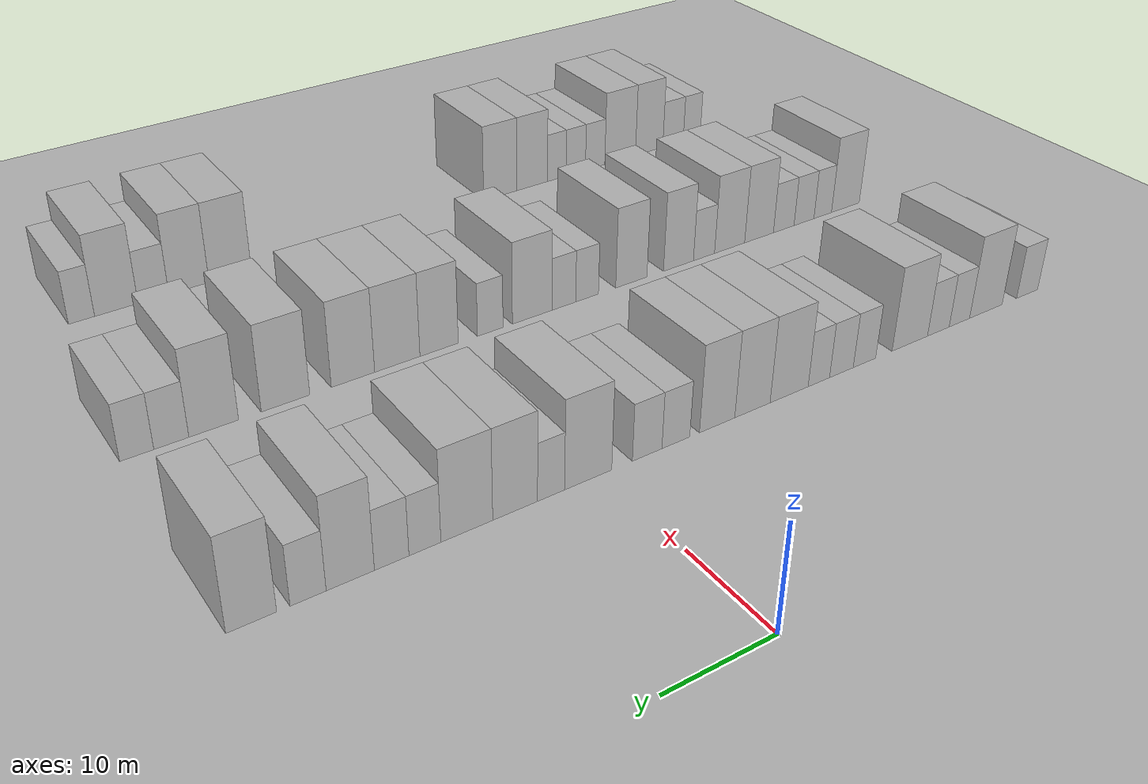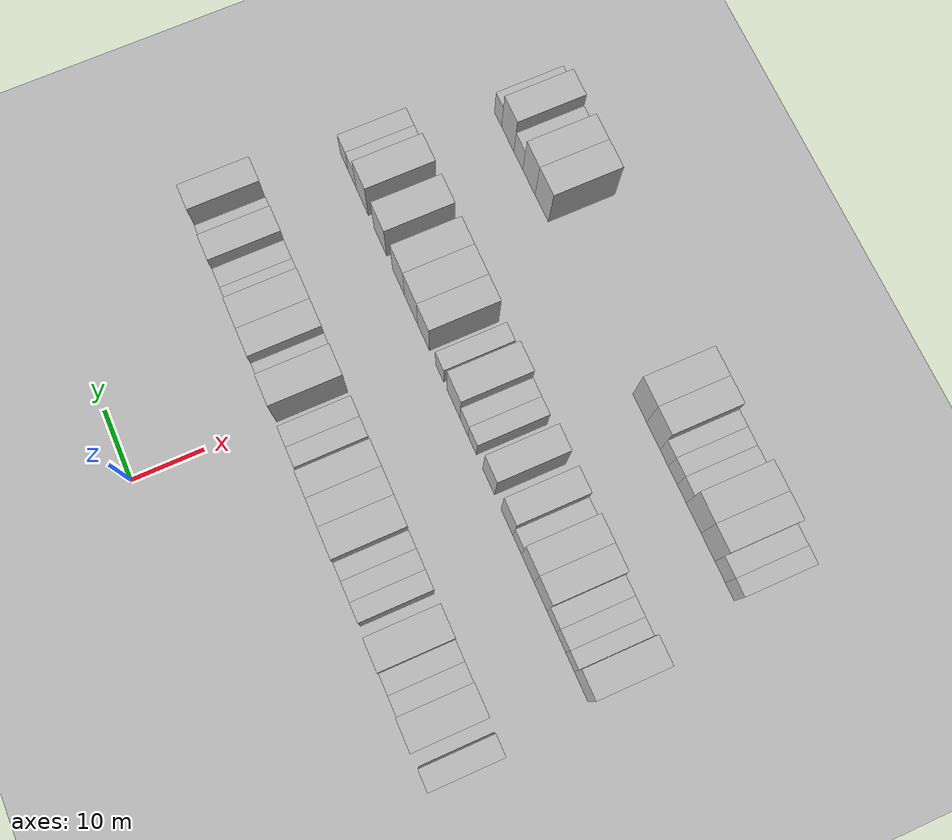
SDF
<sdf version="1.6">
 <world name="default">
  <include><name>ground_plane_1</name><uri>model://HANNAS_ground_plane</uri></include>
  <include>
   <name>ground_plane_2</name>
   <uri>model://HANNAS_ground_plane</uri>
   <pose>100 0 0  0 0 0</pose>
  </include>
  <model name="building_45">
   <static>1</static>
   <pose>25.0000 -48.6650 0 0.000000 0.000000 0.000000</pose>
   <link name="link">
    <pose>0 0 3.00 0 0 0</pose>
    <collision name="collision"><geometry><box><size>10.0000 2.9253 6.0000</size></box></geometry></collision>
    <visual name="visual">
     <cast_shadows>0</cast_shadows>
     <geometry><box><size>10.0000 2.9253 6.0000</size></box></geometry>
     <material>
      <script>
       <uri>model://HANNAS_wall/materials/scripts</uri>
       <uri>model://HANNAS_wall/materials/textures</uri>
       <name>vrc/HANNAS_wall</name>
      </script>
     </material>
    </visual>
   </link>
  </model>
  <model name="building_46">
   <static>1</static>
   <pose>25.0000 -43.0246 0 0.000000 0.000000 0.000000</pose>
   <link name="link">
    <pose>0 0 4.50 0 0 0</pose>
    <collision name="collision"><geometry><box><size>10.0000 4.3555 9.0000</size></box></geometry></collision>
    <visual name="visual">
     <cast_shadows>0</cast_shadows>
     <geometry><box><size>10.0000 4.3555 9.0000</size></box></geometry>
     <material>
      <script>
       <uri>model://HANNAS_wall/materials/scripts</uri>
       <uri>model://HANNAS_wall/materials/textures</uri>
       <name>vrc/HANNAS_wall</name>
      </script>
     </material>
    </visual>
   </link>
  </model>
  <model name="building_47">
   <static>1</static>
   <pose>25.0000 -39.5159 0 0.000000 0.000000 0.000000</pose>
   <link name="link">
    <pose>0 0 3.00 0 0 0</pose>
    <collision name="collision"><geometry><box><size>10.0000 2.6619 6.0000</size></box></geometry></collision>
    <visual name="visual">
     <cast_shadows>0</cast_shadows>
     <geometry><box><size>10.0000 2.6619 6.0000</size></box></geometry>
     <material>
      <script>
       <uri>model://HANNAS_wall/materials/scripts</uri>
       <uri>model://HANNAS_wall/materials/textures</uri>
       <name>vrc/HANNAS_wall</name>
      </script>
     </material>
    </visual>
   </link>
  </model>
  <model name="building_48">
   <static>1</static>
   <pose>25.0000 -36.7936 0 0.000000 0.000000 0.000000</pose>
   <link name="link">
    <pose>0 0 3.00 0 0 0</pose>
    <collision name="collision"><geometry><box><size>10.0000 2.7826 6.0000</size></box></geometry></collision>
    <visual name="visual">
     <cast_shadows>0</cast_shadows>
     <geometry><box><size>10.0000 2.7826 6.0000</size></box></geometry>
     <material>
      <script>
       <uri>model://HANNAS_wall/materials/scripts</uri>
       <uri>model://HANNAS_wall/materials/textures</uri>
       <name>vrc/HANNAS_wall</name>
      </script>
     </material>
    </visual>
   </link>
  </model>
  <model name="building_49">
   <static>1</static>
   <pose>25.0000 -33.1909 0 0.000000 0.000000 0.000000</pose>
   <link name="link">
    <pose>0 0 4.50 0 0 0</pose>
    <collision name="collision"><geometry><box><size>10.0000 4.4228 9.0000</size></box></geometry></collision>
    <visual name="visual">
     <cast_shadows>0</cast_shadows>
     <geometry><box><size>10.0000 4.4228 9.0000</size></box></geometry>
     <material>
      <script>
       <uri>model://HANNAS_wall/materials/scripts</uri>
       <uri>model://HANNAS_wall/materials/textures</uri>
       <name>vrc/HANNAS_wall</name>
      </script>
     </material>
    </visual>
   </link>
  </model>
  <model name="building_50">
   <static>1</static>
   <pose>25.0000 -27.6379 0 0.000000 0.000000 0.000000</pose>
   <link name="link">
    <pose>0 0 3.00 0 0 0</pose>
    <collision name="collision"><geometry><box><size>10.0000 2.6832 6.0000</size></box></geometry></collision>
    <visual name="visual">
     <cast_shadows>0</cast_shadows>
     <geometry><box><size>10.0000 2.6832 6.0000</size></box></geometry>
     <material>
      <script>
       <uri>model://HANNAS_wall/materials/scripts</uri>
       <uri>model://HANNAS_wall/materials/textures</uri>
       <name>vrc/HANNAS_wall</name>
      </script>
     </material>
    </visual>
   </link>
  </model>
  <model name="building_51">
   <static>1</static>
   <pose>25.0000 -24.9080 0 0.000000 0.000000 0.000000</pose>
   <link name="link">
    <pose>0 0 3.00 0 0 0</pose>
    <collision name="collision"><geometry><box><size>10.0000 2.7767 6.0000</size></box></geometry></collision>
    <visual name="visual">
     <cast_shadows>0</cast_shadows>
     <geometry><box><size>10.0000 2.7767 6.0000</size></box></geometry>
     <material>
      <script>
       <uri>model://HANNAS_wall/materials/scripts</uri>
       <uri>model://HANNAS_wall/materials/textures</uri>
       <name>vrc/HANNAS_wall</name>
      </script>
     </material>
    </visual>
   </link>
  </model>
  <model name="building_52">
   <static>1</static>
   <pose>25.0000 -22.2882 0 0.000000 0.000000 0.000000</pose>
   <link name="link">
    <pose>0 0 3.00 0 0 0</pose>
    <collision name="collision"><geometry><box><size>10.0000 2.4629 6.0000</size></box></geometry></collision>
    <visual name="visual">
     <cast_shadows>0</cast_shadows>
     <geometry><box><size>10.0000 2.4629 6.0000</size></box></geometry>
     <material>
      <script>
       <uri>model://HANNAS_wall/materials/scripts</uri>
       <uri>model://HANNAS_wall/materials/textures</uri>
       <name>vrc/HANNAS_wall</name>
      </script>
     </material>
    </visual>
   </link>
  </model>
  <model name="building_53">
   <static>1</static>
   <pose>25.0000 -18.9310 0 0.000000 0.000000 0.000000</pose>
   <link name="link">
    <pose>0 0 4.50 0 0 0</pose>
    <collision name="collision"><geometry><box><size>10.0000 4.2515 9.0000</size></box></geometry></collision>
    <visual name="visual">
     <cast_shadows>0</cast_shadows>
     <geometry><box><size>10.0000 4.2515 9.0000</size></box></geometry>
     <material>
      <script>
       <uri>model://HANNAS_wall/materials/scripts</uri>
       <uri>model://HANNAS_wall/materials/textures</uri>
       <name>vrc/HANNAS_wall</name>
      </script>
     </material>
    </visual>
   </link>
  </model>
  <model name="building_54">
   <static>1</static>
   <pose>25.0000 -14.8926 0 0.000000 0.000000 0.000000</pose>
   <link name="link">
    <pose>0 0 4.50 0 0 0</pose>
    <collision name="collision"><geometry><box><size>10.0000 3.8254 9.0000</size></box></geometry></collision>
    <visual name="visual">
     <cast_shadows>0</cast_shadows>
     <geometry><box><size>10.0000 3.8254 9.0000</size></box></geometry>
     <material>
      <script>
       <uri>model://HANNAS_wall/materials/scripts</uri>
       <uri>model://HANNAS_wall/materials/textures</uri>
       <name>vrc/HANNAS_wall</name>
      </script>
     </material>
    </visual>
   </link>
  </model>
  <model name="building_55">
   <static>1</static>
   <pose>25.0000 -11.1244 0 0.000000 0.000000 0.000000</pose>
   <link name="link">
    <pose>0 0 4.50 0 0 0</pose>
    <collision name="collision"><geometry><box><size>10.0000 3.7109 9.0000</size></box></geometry></collision>
    <visual name="visual">
     <cast_shadows>0</cast_shadows>
     <geometry><box><size>10.0000 3.7109 9.0000</size></box></geometry>
     <material>
      <script>
       <uri>model://HANNAS_wall/materials/scripts</uri>
       <uri>model://HANNAS_wall/materials/textures</uri>
       <name>vrc/HANNAS_wall</name>
      </script>
     </material>
    </visual>
   </link>
  </model>
  <model name="building_56">
   <static>1</static>
   <pose>25.0000 -6.8557 0 0.000000 0.000000 0.000000</pose>
   <link name="link">
    <pose>0 0 3.00 0 0 0</pose>
    <collision name="collision"><geometry><box><size>10.0000 2.8265 6.0000</size></box></geometry></collision>
    <visual name="visual">
     <cast_shadows>0</cast_shadows>
     <geometry><box><size>10.0000 2.8265 6.0000</size></box></geometry>
     <material>
      <script>
       <uri>model://HANNAS_wall/materials/scripts</uri>
       <uri>model://HANNAS_wall/materials/textures</uri>
       <name>vrc/HANNAS_wall</name>
      </script>
     </material>
    </visual>
   </link>
  </model>
  <model name="building_57">
   <static>1</static>
   <pose>25.0000 -3.9783 0 0.000000 0.000000 0.000000</pose>
   <link name="link">
    <pose>0 0 3.00 0 0 0</pose>
    <collision name="collision"><geometry><box><size>10.0000 2.9283 6.0000</size></box></geometry></collision>
    <visual name="visual">
     <cast_shadows>0</cast_shadows>
     <geometry><box><size>10.0000 2.9283 6.0000</size></box></geometry>
     <material>
      <script>
       <uri>model://HANNAS_wall/materials/scripts</uri>
       <uri>model://HANNAS_wall/materials/textures</uri>
       <name>vrc/HANNAS_wall</name>
      </script>
     </material>
    </visual>
   </link>
  </model>
  <model name="building_58">
   <static>1</static>
   <pose>25.0000 1.7141 0 0.000000 0.000000 0.000000</pose>
   <link name="link">
    <pose>0 0 4.50 0 0 0</pose>
    <collision name="collision"><geometry><box><size>10.0000 4.4565 9.0000</size></box></geometry></collision>
    <visual name="visual">
     <cast_shadows>0</cast_shadows>
     <geometry><box><size>10.0000 4.4565 9.0000</size></box></geometry>
     <material>
      <script>
       <uri>model://HANNAS_wall/materials/scripts</uri>
       <uri>model://HANNAS_wall/materials/textures</uri>
       <name>vrc/HANNAS_wall</name>
      </script>
     </material>
    </visual>
   </link>
  </model>
  <model name="building_59">
   <static>1</static>
   <pose>25.0000 5.1756 0 0.000000 0.000000 0.000000</pose>
   <link name="link">
    <pose>0 0 3.00 0 0 0</pose>
    <collision name="collision"><geometry><box><size>10.0000 2.4665 6.0000</size></box></geometry></collision>
    <visual name="visual">
     <cast_shadows>0</cast_shadows>
     <geometry><box><size>10.0000 2.4665 6.0000</size></box></geometry>
     <material>
      <script>
       <uri>model://HANNAS_wall/materials/scripts</uri>
       <uri>model://HANNAS_wall/materials/textures</uri>
       <name>vrc/HANNAS_wall</name>
      </script>
     </material>
    </visual>
   </link>
  </model>
  <model name="building_60">
   <static>1</static>
   <pose>25.0000 8.4031 0 0.000000 0.000000 0.000000</pose>
   <link name="link">
    <pose>0 0 4.50 0 0 0</pose>
    <collision name="collision"><geometry><box><size>10.0000 3.9883 9.0000</size></box></geometry></collision>
    <visual name="visual">
     <cast_shadows>0</cast_shadows>
     <geometry><box><size>10.0000 3.9883 9.0000</size></box></geometry>
     <material>
      <script>
       <uri>model://HANNAS_wall/materials/scripts</uri>
       <uri>model://HANNAS_wall/materials/textures</uri>
       <name>vrc/HANNAS_wall</name>
      </script>
     </material>
    </visual>
   </link>
  </model>
  <model name="building_61">
   <static>1</static>
   <pose>25.0000 12.6210 0 0.000000 0.000000 0.000000</pose>
   <link name="link">
    <pose>0 0 4.50 0 0 0</pose>
    <collision name="collision"><geometry><box><size>10.0000 4.4476 9.0000</size></box></geometry></collision>
    <visual name="visual">
     <cast_shadows>0</cast_shadows>
     <geometry><box><size>10.0000 4.4476 9.0000</size></box></geometry>
     <material>
      <script>
       <uri>model://HANNAS_wall/materials/scripts</uri>
       <uri>model://HANNAS_wall/materials/textures</uri>
       <name>vrc/HANNAS_wall</name>
      </script>
     </material>
    </visual>
   </link>
  </model>
  <model name="building_62">
   <static>1</static>
   <pose>25.0000 16.1687 0 0.000000 0.000000 0.000000</pose>
   <link name="link">
    <pose>0 0 3.00 0 0 0</pose>
    <collision name="collision"><geometry><box><size>10.0000 2.6478 6.0000</size></box></geometry></collision>
    <visual name="visual">
     <cast_shadows>0</cast_shadows>
     <geometry><box><size>10.0000 2.6478 6.0000</size></box></geometry>
     <material>
      <script>
       <uri>model://HANNAS_wall/materials/scripts</uri>
       <uri>model://HANNAS_wall/materials/textures</uri>
       <name>vrc/HANNAS_wall</name>
      </script>
     </material>
    </visual>
   </link>
  </model>
  <model name="building_63">
   <static>1</static>
   <pose>25.0000 18.8920 0 0.000000 0.000000 0.000000</pose>
   <link name="link">
    <pose>0 0 3.00 0 0 0</pose>
    <collision name="collision"><geometry><box><size>10.0000 2.7990 6.0000</size></box></geometry></collision>
    <visual name="visual">
     <cast_shadows>0</cast_shadows>
     <geometry><box><size>10.0000 2.7990 6.0000</size></box></geometry>
     <material>
      <script>
       <uri>model://HANNAS_wall/materials/scripts</uri>
       <uri>model://HANNAS_wall/materials/textures</uri>
       <name>vrc/HANNAS_wall</name>
      </script>
     </material>
    </visual>
   </link>
  </model>
  <model name="building_64">
   <static>1</static>
   <pose>25.0000 22.1858 0 0.000000 0.000000 0.000000</pose>
   <link name="link">
    <pose>0 0 4.50 0 0 0</pose>
    <collision name="collision"><geometry><box><size>10.0000 3.7886 9.0000</size></box></geometry></collision>
    <visual name="visual">
     <cast_shadows>0</cast_shadows>
     <geometry><box><size>10.0000 3.7886 9.0000</size></box></geometry>
     <material>
      <script>
       <uri>model://HANNAS_wall/materials/scripts</uri>
       <uri>model://HANNAS_wall/materials/textures</uri>
       <name>vrc/HANNAS_wall</name>
      </script>
     </material>
    </visual>
   </link>
  </model>
  <model name="building_65">
   <static>1</static>
   <pose>25.0000 25.4565 0 0.000000 0.000000 0.000000</pose>
   <link name="link">
    <pose>0 0 3.00 0 0 0</pose>
    <collision name="collision"><geometry><box><size>10.0000 2.7529 6.0000</size></box></geometry></collision>
    <visual name="visual">
     <cast_shadows>0</cast_shadows>
     <geometry><box><size>10.0000 2.7529 6.0000</size></box></geometry>
     <material>
      <script>
       <uri>model://HANNAS_wall/materials/scripts</uri>
       <uri>model://HANNAS_wall/materials/textures</uri>
       <name>vrc/HANNAS_wall</name>
      </script>
     </material>
    </visual>
   </link>
  </model>
  <model name="building_66">
   <static>1</static>
   <pose>25.0000 29.7013 0 0.000000 0.000000 0.000000</pose>
   <link name="link">
    <pose>0 0 4.50 0 0 0</pose>
    <collision name="collision"><geometry><box><size>10.0000 3.7367 9.0000</size></box></geometry></collision>
    <visual name="visual">
     <cast_shadows>0</cast_shadows>
     <geometry><box><size>10.0000 3.7367 9.0000</size></box></geometry>
     <material>
      <script>
       <uri>model://HANNAS_wall/materials/scripts</uri>
       <uri>model://HANNAS_wall/materials/textures</uri>
       <name>vrc/HANNAS_wall</name>
      </script>
     </material>
    </visual>
   </link>
  </model>
  <model name="building_177">
   <static>1</static>
   <pose>47.0000 -46.4811 0 0.000000 0.000000 0.000000</pose>
   <link name="link">
    <pose>0 0 4.50 0 0 0</pose>
    <collision name="collision"><geometry><box><size>10.0000 3.9517 9.0000</size></box></geometry></collision>
    <visual name="visual">
     <cast_shadows>0</cast_shadows>
     <geometry><box><size>10.0000 3.9517 9.0000</size></box></geometry>
     <material>
      <script>
       <uri>model://HANNAS_wall/materials/scripts</uri>
       <uri>model://HANNAS_wall/materials/textures</uri>
       <name>vrc/HANNAS_wall</name>
      </script>
     </material>
    </visual>
   </link>
  </model>
  <model name="building_178">
   <static>1</static>
   <pose>47.0000 -43.2829 0 0.000000 0.000000 0.000000</pose>
   <link name="link">
    <pose>0 0 3.00 0 0 0</pose>
    <collision name="collision"><geometry><box><size>10.0000 2.4446 6.0000</size></box></geometry></collision>
    <visual name="visual">
     <cast_shadows>0</cast_shadows>
     <geometry><box><size>10.0000 2.4446 6.0000</size></box></geometry>
     <material>
      <script>
       <uri>model://HANNAS_wall/materials/scripts</uri>
       <uri>model://HANNAS_wall/materials/textures</uri>
       <name>vrc/HANNAS_wall</name>
      </script>
     </material>
    </visual>
   </link>
  </model>
  <model name="building_179">
   <static>1</static>
   <pose>47.0000 -40.6939 0 0.000000 0.000000 0.000000</pose>
   <link name="link">
    <pose>0 0 3.00 0 0 0</pose>
    <collision name="collision"><geometry><box><size>10.0000 2.7335 6.0000</size></box></geometry></collision>
    <visual name="visual">
     <cast_shadows>0</cast_shadows>
     <geometry><box><size>10.0000 2.7335 6.0000</size></box></geometry>
     <material>
      <script>
       <uri>model://HANNAS_wall/materials/scripts</uri>
       <uri>model://HANNAS_wall/materials/textures</uri>
       <name>vrc/HANNAS_wall</name>
      </script>
     </material>
    </visual>
   </link>
  </model>
  <model name="building_180">
   <static>1</static>
   <pose>47.0000 -37.9364 0 0.000000 0.000000 0.000000</pose>
   <link name="link">
    <pose>0 0 3.00 0 0 0</pose>
    <collision name="collision"><geometry><box><size>10.0000 2.7815 6.0000</size></box></geometry></collision>
    <visual name="visual">
     <cast_shadows>0</cast_shadows>
     <geometry><box><size>10.0000 2.7815 6.0000</size></box></geometry>
     <material>
      <script>
       <uri>model://HANNAS_wall/materials/scripts</uri>
       <uri>model://HANNAS_wall/materials/textures</uri>
       <name>vrc/HANNAS_wall</name>
      </script>
     </material>
    </visual>
   </link>
  </model>
  <model name="building_181">
   <static>1</static>
   <pose>47.0000 -34.6448 0 0.000000 0.000000 0.000000</pose>
   <link name="link">
    <pose>0 0 4.50 0 0 0</pose>
    <collision name="collision"><geometry><box><size>10.0000 3.8015 9.0000</size></box></geometry></collision>
    <visual name="visual">
     <cast_shadows>0</cast_shadows>
     <geometry><box><size>10.0000 3.8015 9.0000</size></box></geometry>
     <material>
      <script>
       <uri>model://HANNAS_wall/materials/scripts</uri>
       <uri>model://HANNAS_wall/materials/textures</uri>
       <name>vrc/HANNAS_wall</name>
      </script>
     </material>
    </visual>
   </link>
  </model>
  <model name="building_182">
   <static>1</static>
   <pose>47.0000 -30.8089 0 0.000000 0.000000 0.000000</pose>
   <link name="link">
    <pose>0 0 4.50 0 0 0</pose>
    <collision name="collision"><geometry><box><size>10.0000 3.8704 9.0000</size></box></geometry></collision>
    <visual name="visual">
     <cast_shadows>0</cast_shadows>
     <geometry><box><size>10.0000 3.8704 9.0000</size></box></geometry>
     <material>
      <script>
       <uri>model://HANNAS_wall/materials/scripts</uri>
       <uri>model://HANNAS_wall/materials/textures</uri>
       <name>vrc/HANNAS_wall</name>
      </script>
     </material>
    </visual>
   </link>
  </model>
  <model name="building_183">
   <static>1</static>
   <pose>47.0000 -27.5439 0 0.000000 0.000000 0.000000</pose>
   <link name="link">
    <pose>0 0 3.00 0 0 0</pose>
    <collision name="collision"><geometry><box><size>10.0000 2.6595 6.0000</size></box></geometry></collision>
    <visual name="visual">
     <cast_shadows>0</cast_shadows>
     <geometry><box><size>10.0000 2.6595 6.0000</size></box></geometry>
     <material>
      <script>
       <uri>model://HANNAS_wall/materials/scripts</uri>
       <uri>model://HANNAS_wall/materials/textures</uri>
       <name>vrc/HANNAS_wall</name>
      </script>
     </material>
    </visual>
   </link>
  </model>
  <model name="building_184">
   <static>1</static>
   <pose>47.0000 -24.3726 0 0.000000 0.000000 0.000000</pose>
   <link name="link">
    <pose>0 0 4.50 0 0 0</pose>
    <collision name="collision"><geometry><box><size>10.0000 3.6830 9.0000</size></box></geometry></collision>
    <visual name="visual">
     <cast_shadows>0</cast_shadows>
     <geometry><box><size>10.0000 3.6830 9.0000</size></box></geometry>
     <material>
      <script>
       <uri>model://HANNAS_wall/materials/scripts</uri>
       <uri>model://HANNAS_wall/materials/textures</uri>
       <name>vrc/HANNAS_wall</name>
      </script>
     </material>
    </visual>
   </link>
  </model>
  <model name="building_185">
   <static>1</static>
   <pose>47.0000 -18.6805 0 0.000000 0.000000 0.000000</pose>
   <link name="link">
    <pose>0 0 4.50 0 0 0</pose>
    <collision name="collision"><geometry><box><size>10.0000 3.7012 9.0000</size></box></geometry></collision>
    <visual name="visual">
     <cast_shadows>0</cast_shadows>
     <geometry><box><size>10.0000 3.7012 9.0000</size></box></geometry>
     <material>
      <script>
       <uri>model://HANNAS_wall/materials/scripts</uri>
       <uri>model://HANNAS_wall/materials/textures</uri>
       <name>vrc/HANNAS_wall</name>
      </script>
     </material>
    </visual>
   </link>
  </model>
  <model name="building_186">
   <static>1</static>
   <pose>47.0000 -13.5285 0 0.000000 0.000000 0.000000</pose>
   <link name="link">
    <pose>0 0 3.00 0 0 0</pose>
    <collision name="collision"><geometry><box><size>10.0000 2.6029 6.0000</size></box></geometry></collision>
    <visual name="visual">
     <cast_shadows>0</cast_shadows>
     <geometry><box><size>10.0000 2.6029 6.0000</size></box></geometry>
     <material>
      <script>
       <uri>model://HANNAS_wall/materials/scripts</uri>
       <uri>model://HANNAS_wall/materials/textures</uri>
       <name>vrc/HANNAS_wall</name>
      </script>
     </material>
    </visual>
   </link>
  </model>
  <model name="building_187">
   <static>1</static>
   <pose>47.0000 -10.8962 0 0.000000 0.000000 0.000000</pose>
   <link name="link">
    <pose>0 0 3.00 0 0 0</pose>
    <collision name="collision"><geometry><box><size>10.0000 2.6617 6.0000</size></box></geometry></collision>
    <visual name="visual">
     <cast_shadows>0</cast_shadows>
     <geometry><box><size>10.0000 2.6617 6.0000</size></box></geometry>
     <material>
      <script>
       <uri>model://HANNAS_wall/materials/scripts</uri>
       <uri>model://HANNAS_wall/materials/textures</uri>
       <name>vrc/HANNAS_wall</name>
      </script>
     </material>
    </visual>
   </link>
  </model>
  <model name="building_188">
   <static>1</static>
   <pose>47.0000 -7.4083 0 0.000000 0.000000 0.000000</pose>
   <link name="link">
    <pose>0 0 4.50 0 0 0</pose>
    <collision name="collision"><geometry><box><size>10.0000 4.3140 9.0000</size></box></geometry></collision>
    <visual name="visual">
     <cast_shadows>0</cast_shadows>
     <geometry><box><size>10.0000 4.3140 9.0000</size></box></geometry>
     <material>
      <script>
       <uri>model://HANNAS_wall/materials/scripts</uri>
       <uri>model://HANNAS_wall/materials/textures</uri>
       <name>vrc/HANNAS_wall</name>
      </script>
     </material>
    </visual>
   </link>
  </model>
  <model name="building_189">
   <static>1</static>
   <pose>47.0000 -2.8998 0 0.000000 0.000000 0.000000</pose>
   <link name="link">
    <pose>0 0 3.00 0 0 0</pose>
    <collision name="collision"><geometry><box><size>10.0000 2.7029 6.0000</size></box></geometry></collision>
    <visual name="visual">
     <cast_shadows>0</cast_shadows>
     <geometry><box><size>10.0000 2.7029 6.0000</size></box></geometry>
     <material>
      <script>
       <uri>model://HANNAS_wall/materials/scripts</uri>
       <uri>model://HANNAS_wall/materials/textures</uri>
       <name>vrc/HANNAS_wall</name>
      </script>
     </material>
    </visual>
   </link>
  </model>
  <model name="building_190">
   <static>1</static>
   <pose>47.0000 2.3983 0 0.000000 0.000000 0.000000</pose>
   <link name="link">
    <pose>0 0 4.50 0 0 0</pose>
    <collision name="collision"><geometry><box><size>10.0000 3.8932 9.0000</size></box></geometry></collision>
    <visual name="visual">
     <cast_shadows>0</cast_shadows>
     <geometry><box><size>10.0000 3.8932 9.0000</size></box></geometry>
     <material>
      <script>
       <uri>model://HANNAS_wall/materials/scripts</uri>
       <uri>model://HANNAS_wall/materials/textures</uri>
       <name>vrc/HANNAS_wall</name>
      </script>
     </material>
    </visual>
   </link>
  </model>
  <model name="building_191">
   <static>1</static>
   <pose>47.0000 6.5740 0 0.000000 0.000000 0.000000</pose>
   <link name="link">
    <pose>0 0 4.50 0 0 0</pose>
    <collision name="collision"><geometry><box><size>10.0000 4.4583 9.0000</size></box></geometry></collision>
    <visual name="visual">
     <cast_shadows>0</cast_shadows>
     <geometry><box><size>10.0000 4.4583 9.0000</size></box></geometry>
     <material>
      <script>
       <uri>model://HANNAS_wall/materials/scripts</uri>
       <uri>model://HANNAS_wall/materials/textures</uri>
       <name>vrc/HANNAS_wall</name>
      </script>
     </material>
    </visual>
   </link>
  </model>
  <model name="building_192">
   <static>1</static>
   <pose>47.0000 10.8711 0 0.000000 0.000000 0.000000</pose>
   <link name="link">
    <pose>0 0 4.50 0 0 0</pose>
    <collision name="collision"><geometry><box><size>10.0000 4.1358 9.0000</size></box></geometry></collision>
    <visual name="visual">
     <cast_shadows>0</cast_shadows>
     <geometry><box><size>10.0000 4.1358 9.0000</size></box></geometry>
     <material>
      <script>
       <uri>model://HANNAS_wall/materials/scripts</uri>
       <uri>model://HANNAS_wall/materials/textures</uri>
       <name>vrc/HANNAS_wall</name>
      </script>
     </material>
    </visual>
   </link>
  </model>
  <model name="building_193">
   <static>1</static>
   <pose>47.0000 17.1426 0 0.000000 0.000000 0.000000</pose>
   <link name="link">
    <pose>0 0 4.50 0 0 0</pose>
    <collision name="collision"><geometry><box><size>10.0000 4.4072 9.0000</size></box></geometry></collision>
    <visual name="visual">
     <cast_shadows>0</cast_shadows>
     <geometry><box><size>10.0000 4.4072 9.0000</size></box></geometry>
     <material>
      <script>
       <uri>model://HANNAS_wall/materials/scripts</uri>
       <uri>model://HANNAS_wall/materials/textures</uri>
       <name>vrc/HANNAS_wall</name>
      </script>
     </material>
    </visual>
   </link>
  </model>
  <model name="building_194">
   <static>1</static>
   <pose>47.0000 23.4876 0 0.000000 0.000000 0.000000</pose>
   <link name="link">
    <pose>0 0 4.50 0 0 0</pose>
    <collision name="collision"><geometry><box><size>10.0000 4.2829 9.0000</size></box></geometry></collision>
    <visual name="visual">
     <cast_shadows>0</cast_shadows>
     <geometry><box><size>10.0000 4.2829 9.0000</size></box></geometry>
     <material>
      <script>
       <uri>model://HANNAS_wall/materials/scripts</uri>
       <uri>model://HANNAS_wall/materials/textures</uri>
       <name>vrc/HANNAS_wall</name>
      </script>
     </material>
    </visual>
   </link>
  </model>
  <model name="building_195">
   <static>1</static>
   <pose>47.0000 27.0998 0 0.000000 0.000000 0.000000</pose>
   <link name="link">
    <pose>0 0 3.00 0 0 0</pose>
    <collision name="collision"><geometry><box><size>10.0000 2.9415 6.0000</size></box></geometry></collision>
    <visual name="visual">
     <cast_shadows>0</cast_shadows>
     <geometry><box><size>10.0000 2.9415 6.0000</size></box></geometry>
     <material>
      <script>
       <uri>model://HANNAS_wall/materials/scripts</uri>
       <uri>model://HANNAS_wall/materials/textures</uri>
       <name>vrc/HANNAS_wall</name>
      </script>
     </material>
    </visual>
   </link>
  </model>
  <model name="building_196">
   <static>1</static>
   <pose>47.0000 29.9700 0 0.000000 0.000000 0.000000</pose>
   <link name="link">
    <pose>0 0 3.00 0 0 0</pose>
    <collision name="collision"><geometry><box><size>10.0000 2.7989 6.0000</size></box></geometry></collision>
    <visual name="visual">
     <cast_shadows>0</cast_shadows>
     <geometry><box><size>10.0000 2.7989 6.0000</size></box></geometry>
     <material>
      <script>
       <uri>model://HANNAS_wall/materials/scripts</uri>
       <uri>model://HANNAS_wall/materials/textures</uri>
       <name>vrc/HANNAS_wall</name>
      </script>
     </material>
    </visual>
   </link>
  </model>
  <model name="building_308">
   <static>1</static>
   <pose>69.0000 -43.5328 0 0.000000 0.000000 0.000000</pose>
   <link name="link">
    <pose>0 0 3.00 0 0 0</pose>
    <collision name="collision"><geometry><box><size>10.0000 2.4768 6.0000</size></box></geometry></collision>
    <visual name="visual">
     <cast_shadows>0</cast_shadows>
     <geometry><box><size>10.0000 2.4768 6.0000</size></box></geometry>
     <material>
      <script>
       <uri>model://HANNAS_wall/materials/scripts</uri>
       <uri>model://HANNAS_wall/materials/textures</uri>
       <name>vrc/HANNAS_wall</name>
      </script>
     </material>
    </visual>
   </link>
  </model>
  <model name="building_309">
   <static>1</static>
   <pose>69.0000 -40.8245 0 0.000000 0.000000 0.000000</pose>
   <link name="link">
    <pose>0 0 3.00 0 0 0</pose>
    <collision name="collision"><geometry><box><size>10.0000 2.9398 6.0000</size></box></geometry></collision>
    <visual name="visual">
     <cast_shadows>0</cast_shadows>
     <geometry><box><size>10.0000 2.9398 6.0000</size></box></geometry>
     <material>
      <script>
       <uri>model://HANNAS_wall/materials/scripts</uri>
       <uri>model://HANNAS_wall/materials/textures</uri>
       <name>vrc/HANNAS_wall</name>
      </script>
     </material>
    </visual>
   </link>
  </model>
  <model name="building_310">
   <static>1</static>
   <pose>69.0000 -37.4241 0 0.000000 0.000000 0.000000</pose>
   <link name="link">
    <pose>0 0 4.50 0 0 0</pose>
    <collision name="collision"><geometry><box><size>10.0000 3.8610 9.0000</size></box></geometry></collision>
    <visual name="visual">
     <cast_shadows>0</cast_shadows>
     <geometry><box><size>10.0000 3.8610 9.0000</size></box></geometry>
     <material>
      <script>
       <uri>model://HANNAS_wall/materials/scripts</uri>
       <uri>model://HANNAS_wall/materials/textures</uri>
       <name>vrc/HANNAS_wall</name>
      </script>
     </material>
    </visual>
   </link>
  </model>
  <model name="building_311">
   <static>1</static>
   <pose>69.0000 -33.3844 0 0.000000 0.000000 0.000000</pose>
   <link name="link">
    <pose>0 0 4.50 0 0 0</pose>
    <collision name="collision"><geometry><box><size>10.0000 4.2184 9.0000</size></box></geometry></collision>
    <visual name="visual">
     <cast_shadows>0</cast_shadows>
     <geometry><box><size>10.0000 4.2184 9.0000</size></box></geometry>
     <material>
      <script>
       <uri>model://HANNAS_wall/materials/scripts</uri>
       <uri>model://HANNAS_wall/materials/textures</uri>
       <name>vrc/HANNAS_wall</name>
      </script>
     </material>
    </visual>
   </link>
  </model>
  <model name="building_312">
   <static>1</static>
   <pose>69.0000 -29.9705 0 0.000000 0.000000 0.000000</pose>
   <link name="link">
    <pose>0 0 3.00 0 0 0</pose>
    <collision name="collision"><geometry><box><size>10.0000 2.6093 6.0000</size></box></geometry></collision>
    <visual name="visual">
     <cast_shadows>0</cast_shadows>
     <geometry><box><size>10.0000 2.6093 6.0000</size></box></geometry>
     <material>
      <script>
       <uri>model://HANNAS_wall/materials/scripts</uri>
       <uri>model://HANNAS_wall/materials/textures</uri>
       <name>vrc/HANNAS_wall</name>
      </script>
     </material>
    </visual>
   </link>
  </model>
  <model name="building_313">
   <static>1</static>
   <pose>69.0000 -27.3716 0 0.000000 0.000000 0.000000</pose>
   <link name="link">
    <pose>0 0 3.00 0 0 0</pose>
    <collision name="collision"><geometry><box><size>10.0000 2.5885 6.0000</size></box></geometry></collision>
    <visual name="visual">
     <cast_shadows>0</cast_shadows>
     <geometry><box><size>10.0000 2.5885 6.0000</size></box></geometry>
     <material>
      <script>
       <uri>model://HANNAS_wall/materials/scripts</uri>
       <uri>model://HANNAS_wall/materials/textures</uri>
       <name>vrc/HANNAS_wall</name>
      </script>
     </material>
    </visual>
   </link>
  </model>
  <model name="building_314">
   <static>1</static>
   <pose>69.0000 -24.8719 0 0.000000 0.000000 0.000000</pose>
   <link name="link">
    <pose>0 0 3.00 0 0 0</pose>
    <collision name="collision"><geometry><box><size>10.0000 2.4110 6.0000</size></box></geometry></collision>
    <visual name="visual">
     <cast_shadows>0</cast_shadows>
     <geometry><box><size>10.0000 2.4110 6.0000</size></box></geometry>
     <material>
      <script>
       <uri>model://HANNAS_wall/materials/scripts</uri>
       <uri>model://HANNAS_wall/materials/textures</uri>
       <name>vrc/HANNAS_wall</name>
      </script>
     </material>
    </visual>
   </link>
  </model>
  <model name="building_315">
   <static>1</static>
   <pose>69.0000 -21.7056 0 0.000000 0.000000 0.000000</pose>
   <link name="link">
    <pose>0 0 4.50 0 0 0</pose>
    <collision name="collision"><geometry><box><size>10.0000 3.9216 9.0000</size></box></geometry></collision>
    <visual name="visual">
     <cast_shadows>0</cast_shadows>
     <geometry><box><size>10.0000 3.9216 9.0000</size></box></geometry>
     <material>
      <script>
       <uri>model://HANNAS_wall/materials/scripts</uri>
       <uri>model://HANNAS_wall/materials/textures</uri>
       <name>vrc/HANNAS_wall</name>
      </script>
     </material>
    </visual>
   </link>
  </model>
  <model name="building_316">
   <static>1</static>
   <pose>69.0000 -17.6593 0 0.000000 0.000000 0.000000</pose>
   <link name="link">
    <pose>0 0 4.50 0 0 0</pose>
    <collision name="collision"><geometry><box><size>10.0000 4.1712 9.0000</size></box></geometry></collision>
    <visual name="visual">
     <cast_shadows>0</cast_shadows>
     <geometry><box><size>10.0000 4.1712 9.0000</size></box></geometry>
     <material>
      <script>
       <uri>model://HANNAS_wall/materials/scripts</uri>
       <uri>model://HANNAS_wall/materials/textures</uri>
       <name>vrc/HANNAS_wall</name>
      </script>
     </material>
    </visual>
   </link>
  </model>
  <model name="building_317">
   <static>1</static>
   <pose>69.0000 12.9137 0 0.000000 0.000000 0.000000</pose>
   <link name="link">
    <pose>0 0 4.50 0 0 0</pose>
    <collision name="collision"><geometry><box><size>10.0000 4.3249 9.0000</size></box></geometry></collision>
    <visual name="visual">
     <cast_shadows>0</cast_shadows>
     <geometry><box><size>10.0000 4.3249 9.0000</size></box></geometry>
     <material>
      <script>
       <uri>model://HANNAS_wall/materials/scripts</uri>
       <uri>model://HANNAS_wall/materials/textures</uri>
       <name>vrc/HANNAS_wall</name>
      </script>
     </material>
    </visual>
   </link>
  </model>
  <model name="building_318">
   <static>1</static>
   <pose>69.0000 17.0775 0 0.000000 0.000000 0.000000</pose>
   <link name="link">
    <pose>0 0 4.50 0 0 0</pose>
    <collision name="collision"><geometry><box><size>10.0000 4.0027 9.0000</size></box></geometry></collision>
    <visual name="visual">
     <cast_shadows>0</cast_shadows>
     <geometry><box><size>10.0000 4.0027 9.0000</size></box></geometry>
     <material>
      <script>
       <uri>model://HANNAS_wall/materials/scripts</uri>
       <uri>model://HANNAS_wall/materials/textures</uri>
       <name>vrc/HANNAS_wall</name>
      </script>
     </material>
    </visual>
   </link>
  </model>
  <model name="building_319">
   <static>1</static>
   <pose>69.0000 20.5715 0 0.000000 0.000000 0.000000</pose>
   <link name="link">
    <pose>0 0 3.00 0 0 0</pose>
    <collision name="collision"><geometry><box><size>10.0000 2.9854 6.0000</size></box></geometry></collision>
    <visual name="visual">
     <cast_shadows>0</cast_shadows>
     <geometry><box><size>10.0000 2.9854 6.0000</size></box></geometry>
     <material>
      <script>
       <uri>model://HANNAS_wall/materials/scripts</uri>
       <uri>model://HANNAS_wall/materials/textures</uri>
       <name>vrc/HANNAS_wall</name>
      </script>
     </material>
    </visual>
   </link>
  </model>
  <model name="building_320">
   <static>1</static>
   <pose>69.0000 24.1206 0 0.000000 0.000000 0.000000</pose>
   <link name="link">
    <pose>0 0 4.50 0 0 0</pose>
    <collision name="collision"><geometry><box><size>10.0000 4.1129 9.0000</size></box></geometry></collision>
    <visual name="visual">
     <cast_shadows>0</cast_shadows>
     <geometry><box><size>10.0000 4.1129 9.0000</size></box></geometry>
     <material>
      <script>
       <uri>model://HANNAS_wall/materials/scripts</uri>
       <uri>model://HANNAS_wall/materials/textures</uri>
       <name>vrc/HANNAS_wall</name>
      </script>
     </material>
    </visual>
   </link>
  </model>
  <model name="building_321">
   <static>1</static>
   <pose>69.0000 27.3911 0 0.000000 0.000000 0.000000</pose>
   <link name="link">
    <pose>0 0 3.00 0 0 0</pose>
    <collision name="collision"><geometry><box><size>10.0000 2.4280 6.0000</size></box></geometry></collision>
    <visual name="visual">
     <cast_shadows>0</cast_shadows>
     <geometry><box><size>10.0000 2.4280 6.0000</size></box></geometry>
     <material>
      <script>
       <uri>model://HANNAS_wall/materials/scripts</uri>
       <uri>model://HANNAS_wall/materials/textures</uri>
       <name>vrc/HANNAS_wall</name>
      </script>
     </material>
    </visual>
   </link>
  </model>
 </world>
</sdf>
